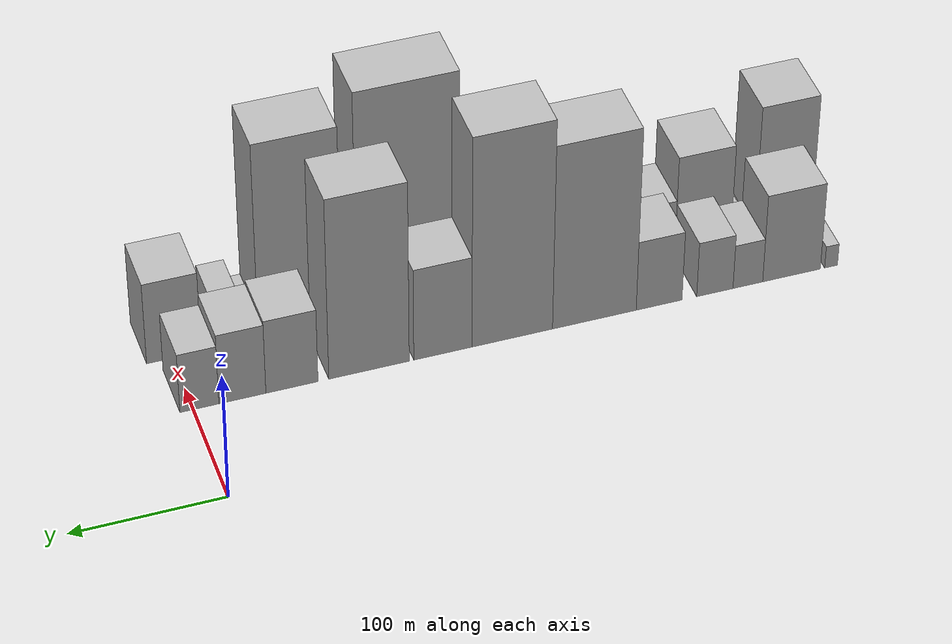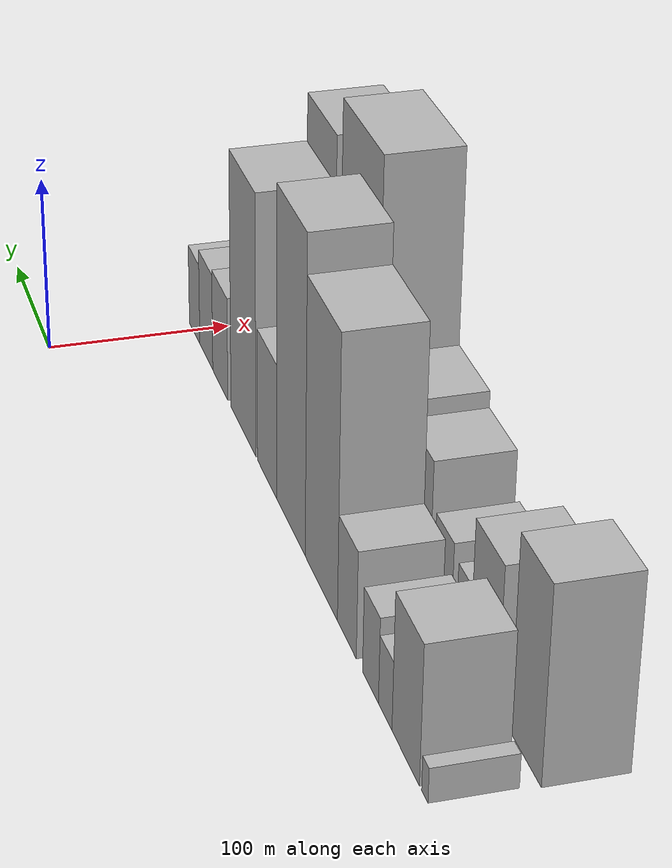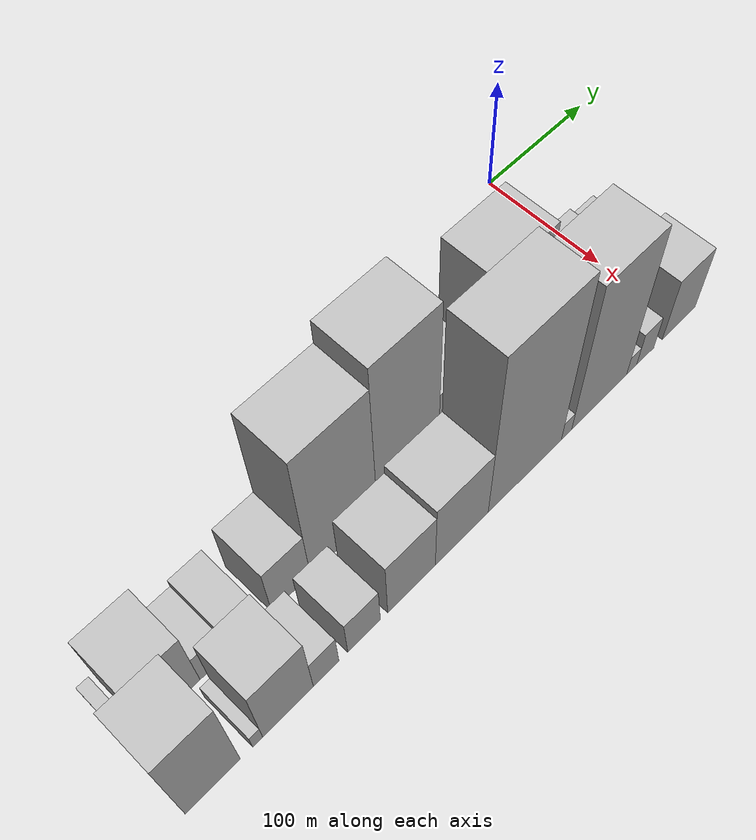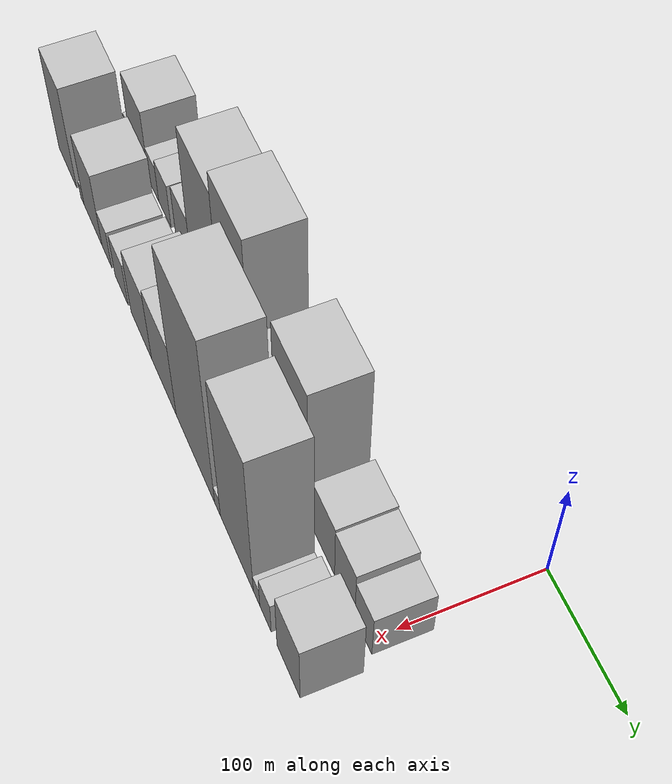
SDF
<sdf version="1.6">
 <world name="default">
  <model name="building_1">
   <static>1</static>
   <pose>100.0000 -424.5669 0 0.000000 0.000000 0.000000</pose>
   <link name="link">
    <pose>0 0 9.00 0 0 0</pose>
    <collision name="collision"><geometry><box><size>40.0000 8.8662 18.0000</size></box></geometry></collision>
    <visual name="visual">
     <cast_shadows>0</cast_shadows>
     <geometry><box><size>40.0000 8.8662 18.0000</size></box></geometry>
     <material>
      <script>
       <uri>model://HANNAS_wall/materials/scripts</uri>
       <uri>model://HANNAS_wall/materials/textures</uri>
       <name>vrc/HANNAS_wall</name>
      </script>
     </material>
    </visual>
   </link>
  </model>
  <model name="building_2">
   <static>1</static>
   <pose>100.0000 -397.2516 0 0.000000 0.000000 0.000000</pose>
   <link name="link">
    <pose>0 0 36.00 0 0 0</pose>
    <collision name="collision"><geometry><box><size>40.0000 39.7645 72.0000</size></box></geometry></collision>
    <visual name="visual">
     <cast_shadows>0</cast_shadows>
     <geometry><box><size>40.0000 39.7645 72.0000</size></box></geometry>
     <material>
      <script>
       <uri>model://HANNAS_wall/materials/scripts</uri>
       <uri>model://HANNAS_wall/materials/textures</uri>
       <name>vrc/HANNAS_wall</name>
      </script>
     </material>
    </visual>
   </link>
  </model>
  <model name="building_3">
   <static>1</static>
   <pose>100.0000 -367.1913 0 0.000000 0.000000 0.000000</pose>
   <link name="link">
    <pose>0 0 18.00 0 0 0</pose>
    <collision name="collision"><geometry><box><size>40.0000 20.3561 36.0000</size></box></geometry></collision>
    <visual name="visual">
     <cast_shadows>0</cast_shadows>
     <geometry><box><size>40.0000 20.3561 36.0000</size></box></geometry>
     <material>
      <script>
       <uri>model://HANNAS_wall/materials/scripts</uri>
       <uri>model://HANNAS_wall/materials/textures</uri>
       <name>vrc/HANNAS_wall</name>
      </script>
     </material>
    </visual>
   </link>
  </model>
  <model name="building_4">
   <static>1</static>
   <pose>100.0000 -344.6293 0 0.000000 0.000000 0.000000</pose>
   <link name="link">
    <pose>0 0 22.50 0 0 0</pose>
    <collision name="collision"><geometry><box><size>40.0000 24.7679 45.0000</size></box></geometry></collision>
    <visual name="visual">
     <cast_shadows>0</cast_shadows>
     <geometry><box><size>40.0000 24.7679 45.0000</size></box></geometry>
     <material>
      <script>
       <uri>model://HANNAS_wall/materials/scripts</uri>
       <uri>model://HANNAS_wall/materials/textures</uri>
       <name>vrc/HANNAS_wall</name>
      </script>
     </material>
    </visual>
   </link>
  </model>
  <model name="building_5">
   <static>1</static>
   <pose>100.0000 -306.7148 0 0.000000 0.000000 0.000000</pose>
   <link name="link">
    <pose>0 0 28.50 0 0 0</pose>
    <collision name="collision"><geometry><box><size>40.0000 31.0610 57.0000</size></box></geometry></collision>
    <visual name="visual">
     <cast_shadows>0</cast_shadows>
     <geometry><box><size>40.0000 31.0610 57.0000</size></box></geometry>
     <material>
      <script>
       <uri>model://HANNAS_wall/materials/scripts</uri>
       <uri>model://HANNAS_wall/materials/textures</uri>
       <name>vrc/HANNAS_wall</name>
      </script>
     </material>
    </visual>
   </link>
  </model>
  <model name="building_6">
   <static>1</static>
   <pose>100.0000 -263.0506 0 0.000000 0.000000 0.000000</pose>
   <link name="link">
    <pose>0 0 75.00 0 0 0</pose>
    <collision name="collision"><geometry><box><size>40.0000 56.2675 150.0000</size></box></geometry></collision>
    <visual name="visual">
     <cast_shadows>0</cast_shadows>
     <geometry><box><size>40.0000 56.2675 150.0000</size></box></geometry>
     <material>
      <script>
       <uri>model://HANNAS_wall/materials/scripts</uri>
       <uri>model://HANNAS_wall/materials/textures</uri>
       <name>vrc/HANNAS_wall</name>
      </script>
     </material>
    </visual>
   </link>
  </model>
  <model name="building_7">
   <static>1</static>
   <pose>100.0000 -208.0769 0 0.000000 0.000000 0.000000</pose>
   <link name="link">
    <pose>0 0 85.50 0 0 0</pose>
    <collision name="collision"><geometry><box><size>40.0000 53.6799 171.0000</size></box></geometry></collision>
    <visual name="visual">
     <cast_shadows>0</cast_shadows>
     <geometry><box><size>40.0000 53.6799 171.0000</size></box></geometry>
     <material>
      <script>
       <uri>model://HANNAS_wall/materials/scripts</uri>
       <uri>model://HANNAS_wall/materials/textures</uri>
       <name>vrc/HANNAS_wall</name>
      </script>
     </material>
    </visual>
   </link>
  </model>
  <model name="building_8">
   <static>1</static>
   <pose>100.0000 -162.0882 0 0.000000 0.000000 0.000000</pose>
   <link name="link">
    <pose>0 0 37.50 0 0 0</pose>
    <collision name="collision"><geometry><box><size>40.0000 38.2975 75.0000</size></box></geometry></collision>
    <visual name="visual">
     <cast_shadows>0</cast_shadows>
     <geometry><box><size>40.0000 38.2975 75.0000</size></box></geometry>
     <material>
      <script>
       <uri>model://HANNAS_wall/materials/scripts</uri>
       <uri>model://HANNAS_wall/materials/textures</uri>
       <name>vrc/HANNAS_wall</name>
      </script>
     </material>
    </visual>
   </link>
  </model>
  <model name="building_9">
   <static>1</static>
   <pose>100.0000 -113.6515 0 0.000000 0.000000 0.000000</pose>
   <link name="link">
    <pose>0 0 73.50 0 0 0</pose>
    <collision name="collision"><geometry><box><size>40.0000 52.5759 147.0000</size></box></geometry></collision>
    <visual name="visual">
     <cast_shadows>0</cast_shadows>
     <geometry><box><size>40.0000 52.5759 147.0000</size></box></geometry>
     <material>
      <script>
       <uri>model://HANNAS_wall/materials/scripts</uri>
       <uri>model://HANNAS_wall/materials/textures</uri>
       <name>vrc/HANNAS_wall</name>
      </script>
     </material>
    </visual>
   </link>
  </model>
  <model name="building_10">
   <static>1</static>
   <pose>100.0000 -63.4851 0 0.000000 0.000000 0.000000</pose>
   <link name="link">
    <pose>0 0 30.00 0 0 0</pose>
    <collision name="collision"><geometry><box><size>40.0000 33.7569 60.0000</size></box></geometry></collision>
    <visual name="visual">
     <cast_shadows>0</cast_shadows>
     <geometry><box><size>40.0000 33.7569 60.0000</size></box></geometry>
     <material>
      <script>
       <uri>model://HANNAS_wall/materials/scripts</uri>
       <uri>model://HANNAS_wall/materials/textures</uri>
       <name>vrc/HANNAS_wall</name>
      </script>
     </material>
    </visual>
   </link>
  </model>
  <model name="building_11">
   <static>1</static>
   <pose>100.0000 -31.4817 0 0.000000 0.000000 0.000000</pose>
   <link name="link">
    <pose>0 0 28.50 0 0 0</pose>
    <collision name="collision"><geometry><box><size>40.0000 30.2500 57.0000</size></box></geometry></collision>
    <visual name="visual">
     <cast_shadows>0</cast_shadows>
     <geometry><box><size>40.0000 30.2500 57.0000</size></box></geometry>
     <material>
      <script>
       <uri>model://HANNAS_wall/materials/scripts</uri>
       <uri>model://HANNAS_wall/materials/textures</uri>
       <name>vrc/HANNAS_wall</name>
      </script>
     </material>
    </visual>
   </link>
  </model>
  <model name="building_12">
   <static>1</static>
   <pose>100.0000 -3.8752 0 0.000000 0.000000 0.000000</pose>
   <link name="link">
    <pose>0 0 24.00 0 0 0</pose>
    <collision name="collision"><geometry><box><size>40.0000 24.9629 48.0000</size></box></geometry></collision>
    <visual name="visual">
     <cast_shadows>0</cast_shadows>
     <geometry><box><size>40.0000 24.9629 48.0000</size></box></geometry>
     <material>
      <script>
       <uri>model://HANNAS_wall/materials/scripts</uri>
       <uri>model://HANNAS_wall/materials/textures</uri>
       <name>vrc/HANNAS_wall</name>
      </script>
     </material>
    </visual>
   </link>
  </model>
  <model name="building_27">
   <static>1</static>
   <pose>149.0000 -411.1014 0 0.000000 0.000000 0.000000</pose>
   <link name="link">
    <pose>0 0 51.00 0 0 0</pose>
    <collision name="collision"><geometry><box><size>40.0000 39.7972 102.0000</size></box></geometry></collision>
    <visual name="visual">
     <cast_shadows>0</cast_shadows>
     <geometry><box><size>40.0000 39.7972 102.0000</size></box></geometry>
     <material>
      <script>
       <uri>model://HANNAS_wall/materials/scripts</uri>
       <uri>model://HANNAS_wall/materials/textures</uri>
       <name>vrc/HANNAS_wall</name>
      </script>
     </material>
    </visual>
   </link>
  </model>
  <model name="building_28">
   <static>1</static>
   <pose>149.0000 -378.4729 0 0.000000 0.000000 0.000000</pose>
   <link name="link">
    <pose>0 0 9.00 0 0 0</pose>
    <collision name="collision"><geometry><box><size>40.0000 7.4599 18.0000</size></box></geometry></collision>
    <visual name="visual">
     <cast_shadows>0</cast_shadows>
     <geometry><box><size>40.0000 7.4599 18.0000</size></box></geometry>
     <material>
      <script>
       <uri>model://HANNAS_wall/materials/scripts</uri>
       <uri>model://HANNAS_wall/materials/textures</uri>
       <name>vrc/HANNAS_wall</name>
      </script>
     </material>
    </visual>
   </link>
  </model>
  <model name="building_29">
   <static>1</static>
   <pose>149.0000 -355.3488 0 0.000000 0.000000 0.000000</pose>
   <link name="link">
    <pose>0 0 37.50 0 0 0</pose>
    <collision name="collision"><geometry><box><size>40.0000 38.7883 75.0000</size></box></geometry></collision>
    <visual name="visual">
     <cast_shadows>0</cast_shadows>
     <geometry><box><size>40.0000 38.7883 75.0000</size></box></geometry>
     <material>
      <script>
       <uri>model://HANNAS_wall/materials/scripts</uri>
       <uri>model://HANNAS_wall/materials/textures</uri>
       <name>vrc/HANNAS_wall</name>
      </script>
     </material>
    </visual>
   </link>
  </model>
  <model name="building_30">
   <static>1</static>
   <pose>149.0000 -325.8457 0 0.000000 0.000000 0.000000</pose>
   <link name="link">
    <pose>0 0 19.50 0 0 0</pose>
    <collision name="collision"><geometry><box><size>40.0000 20.2178 39.0000</size></box></geometry></collision>
    <visual name="visual">
     <cast_shadows>0</cast_shadows>
     <geometry><box><size>40.0000 20.2178 39.0000</size></box></geometry>
     <material>
      <script>
       <uri>model://HANNAS_wall/materials/scripts</uri>
       <uri>model://HANNAS_wall/materials/textures</uri>
       <name>vrc/HANNAS_wall</name>
      </script>
     </material>
    </visual>
   </link>
  </model>
  <model name="building_31">
   <static>1</static>
   <pose>149.0000 -295.4647 0 0.000000 0.000000 0.000000</pose>
   <link name="link">
    <pose>0 0 22.50 0 0 0</pose>
    <collision name="collision"><geometry><box><size>40.0000 26.5442 45.0000</size></box></geometry></collision>
    <visual name="visual">
     <cast_shadows>0</cast_shadows>
     <geometry><box><size>40.0000 26.5442 45.0000</size></box></geometry>
     <material>
      <script>
       <uri>model://HANNAS_wall/materials/scripts</uri>
       <uri>model://HANNAS_wall/materials/textures</uri>
       <name>vrc/HANNAS_wall</name>
      </script>
     </material>
    </visual>
   </link>
  </model>
  <model name="building_32">
   <static>1</static>
   <pose>149.0000 -256.0464 0 0.000000 0.000000 0.000000</pose>
   <link name="link">
    <pose>0 0 34.50 0 0 0</pose>
    <collision name="collision"><geometry><box><size>40.0000 40.2923 69.0000</size></box></geometry></collision>
    <visual name="visual">
     <cast_shadows>0</cast_shadows>
     <geometry><box><size>40.0000 40.2923 69.0000</size></box></geometry>
     <material>
      <script>
       <uri>model://HANNAS_wall/materials/scripts</uri>
       <uri>model://HANNAS_wall/materials/textures</uri>
       <name>vrc/HANNAS_wall</name>
      </script>
     </material>
    </visual>
   </link>
  </model>
  <model name="building_33">
   <static>1</static>
   <pose>149.0000 -212.5605 0 0.000000 0.000000 0.000000</pose>
   <link name="link">
    <pose>0 0 39.00 0 0 0</pose>
    <collision name="collision"><geometry><box><size>40.0000 46.6795 78.0000</size></box></geometry></collision>
    <visual name="visual">
     <cast_shadows>0</cast_shadows>
     <geometry><box><size>40.0000 46.6795 78.0000</size></box></geometry>
     <material>
      <script>
       <uri>model://HANNAS_wall/materials/scripts</uri>
       <uri>model://HANNAS_wall/materials/textures</uri>
       <name>vrc/HANNAS_wall</name>
      </script>
     </material>
    </visual>
   </link>
  </model>
  <model name="building_34">
   <static>1</static>
   <pose>149.0000 -154.9730 0 0.000000 0.000000 0.000000</pose>
   <link name="link">
    <pose>0 0 91.50 0 0 0</pose>
    <collision name="collision"><geometry><box><size>40.0000 68.4954 183.0000</size></box></geometry></collision>
    <visual name="visual">
     <cast_shadows>0</cast_shadows>
     <geometry><box><size>40.0000 68.4954 183.0000</size></box></geometry>
     <material>
      <script>
       <uri>model://HANNAS_wall/materials/scripts</uri>
       <uri>model://HANNAS_wall/materials/textures</uri>
       <name>vrc/HANNAS_wall</name>
      </script>
     </material>
    </visual>
   </link>
  </model>
  <model name="building_35">
   <static>1</static>
   <pose>149.0000 -115.7268 0 0.000000 0.000000 0.000000</pose>
   <link name="link">
    <pose>0 0 10.50 0 0 0</pose>
    <collision name="collision"><geometry><box><size>40.0000 9.9970 21.0000</size></box></geometry></collision>
    <visual name="visual">
     <cast_shadows>0</cast_shadows>
     <geometry><box><size>40.0000 9.9970 21.0000</size></box></geometry>
     <material>
      <script>
       <uri>model://HANNAS_wall/materials/scripts</uri>
       <uri>model://HANNAS_wall/materials/textures</uri>
       <name>vrc/HANNAS_wall</name>
      </script>
     </material>
    </visual>
   </link>
  </model>
  <model name="building_36">
   <static>1</static>
   <pose>149.0000 -83.3577 0 0.000000 0.000000 0.000000</pose>
   <link name="link">
    <pose>0 0 79.50 0 0 0</pose>
    <collision name="collision"><geometry><box><size>40.0000 54.7414 159.0000</size></box></geometry></collision>
    <visual name="visual">
     <cast_shadows>0</cast_shadows>
     <geometry><box><size>40.0000 54.7414 159.0000</size></box></geometry>
     <material>
      <script>
       <uri>model://HANNAS_wall/materials/scripts</uri>
       <uri>model://HANNAS_wall/materials/textures</uri>
       <name>vrc/HANNAS_wall</name>
      </script>
     </material>
    </visual>
   </link>
  </model>
  <model name="building_37">
   <static>1</static>
   <pose>149.0000 -50.7852 0 0.000000 0.000000 0.000000</pose>
   <link name="link">
    <pose>0 0 10.50 0 0 0</pose>
    <collision name="collision"><geometry><box><size>40.0000 10.4036 21.0000</size></box></geometry></collision>
    <visual name="visual">
     <cast_shadows>0</cast_shadows>
     <geometry><box><size>40.0000 10.4036 21.0000</size></box></geometry>
     <material>
      <script>
       <uri>model://HANNAS_wall/materials/scripts</uri>
       <uri>model://HANNAS_wall/materials/textures</uri>
       <name>vrc/HANNAS_wall</name>
      </script>
     </material>
    </visual>
   </link>
  </model>
  <model name="building_38">
   <static>1</static>
   <pose>149.0000 -36.5796 0 0.000000 0.000000 0.000000</pose>
   <link name="link">
    <pose>0 0 18.00 0 0 0</pose>
    <collision name="collision"><geometry><box><size>40.0000 18.0075 36.0000</size></box></geometry></collision>
    <visual name="visual">
     <cast_shadows>0</cast_shadows>
     <geometry><box><size>40.0000 18.0075 36.0000</size></box></geometry>
     <material>
      <script>
       <uri>model://HANNAS_wall/materials/scripts</uri>
       <uri>model://HANNAS_wall/materials/textures</uri>
       <name>vrc/HANNAS_wall</name>
      </script>
     </material>
    </visual>
   </link>
  </model>
  <model name="building_39">
   <static>1</static>
   <pose>149.0000 -0.8917 0 0.000000 0.000000 0.000000</pose>
   <link name="link">
    <pose>0 0 33.00 0 0 0</pose>
    <collision name="collision"><geometry><box><size>40.0000 35.3683 66.0000</size></box></geometry></collision>
    <visual name="visual">
     <cast_shadows>0</cast_shadows>
     <geometry><box><size>40.0000 35.3683 66.0000</size></box></geometry>
     <material>
      <script>
       <uri>model://HANNAS_wall/materials/scripts</uri>
       <uri>model://HANNAS_wall/materials/textures</uri>
       <name>vrc/HANNAS_wall</name>
      </script>
     </material>
    </visual>
   </link>
  </model>
 </world>
</sdf>
